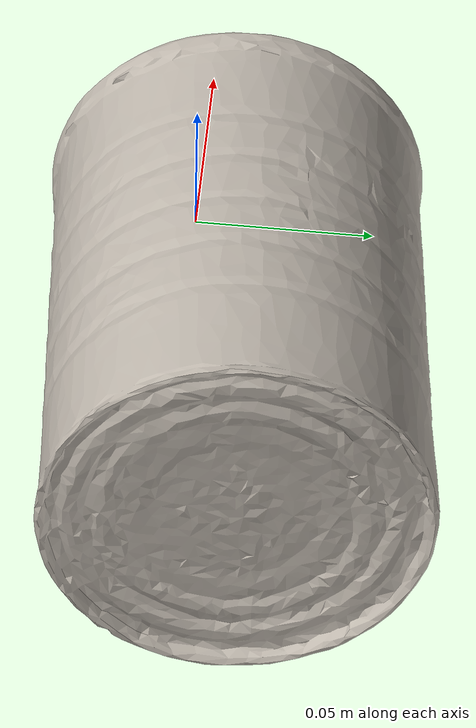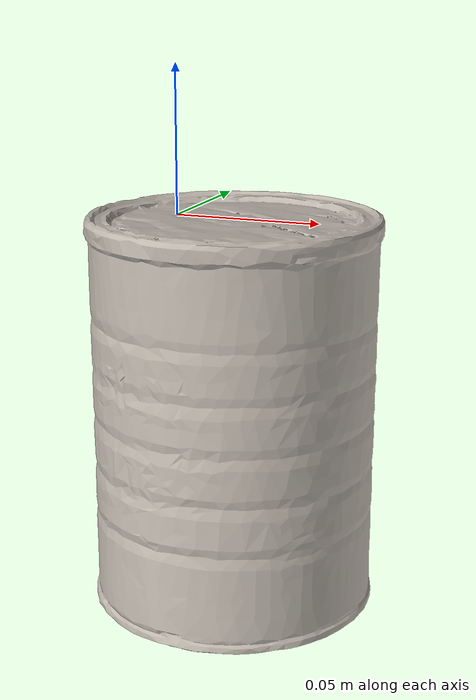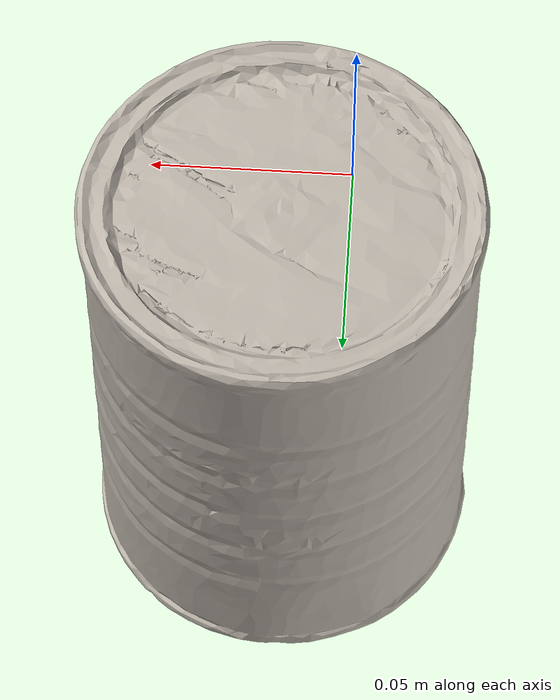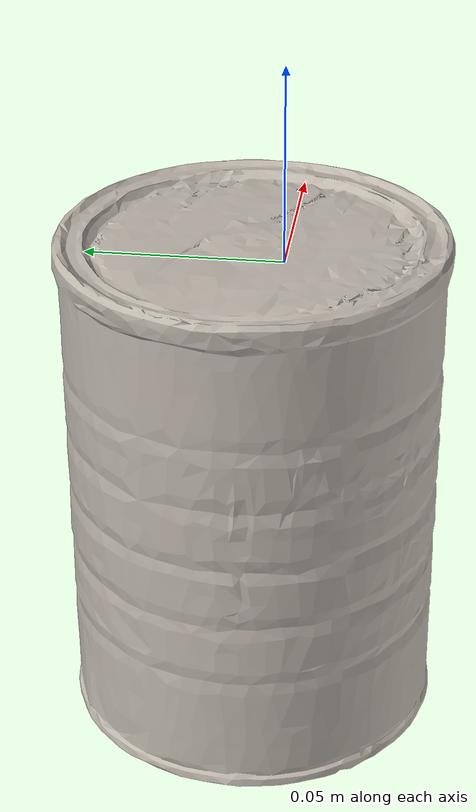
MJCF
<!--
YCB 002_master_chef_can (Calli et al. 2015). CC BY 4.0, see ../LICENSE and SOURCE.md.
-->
<mujoco model="ycb_002_master_chef_can">
  <compiler angle="radian" meshdir="." texturedir="."/>
  <asset>
    <texture name="master_chef_can" type="2d" file="texture_map.png"/>
    <material name="master_chef_can" texture="master_chef_can"/>
    <mesh name="master_chef_can" file="textured.obj"/>
  </asset>
  <worldbody>
    <body name="master_chef_can">
      <freejoint name="master_chef_can_free"/>
      <geom name="master_chef_can_visual" type="mesh" mesh="master_chef_can" material="master_chef_can" pos="0.0170 0.0098 -0.0699"
            contype="0" conaffinity="0" group="2" mass="0"/>
      <geom name="master_chef_can_collision" type="cylinder" size="0.0512 0.0701" mass="0.414"
            group="3" condim="4" friction="0.9 0.005 0.0001"/>
    </body>
  </worldbody>
</mujoco>
